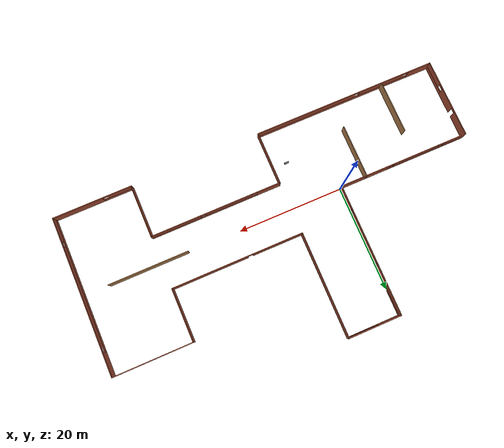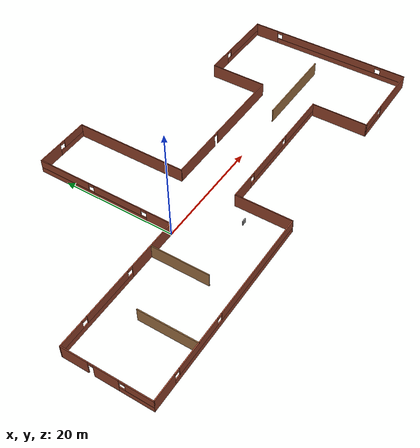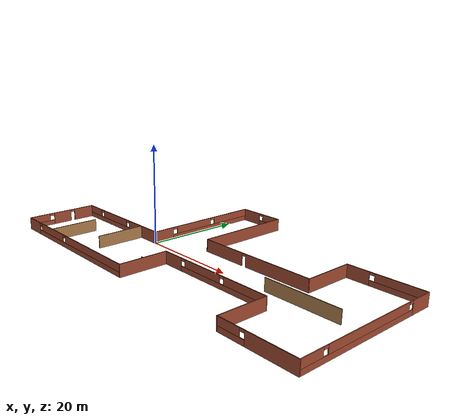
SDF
<?xml version='1.0'?>
<sdf version='1.6'>
  <model name='Building'>
    <pose frame=''>12.5 5 0 0 -0 0</pose>
    <link name='Wall_0'>
      <pose frame=''>-12.5 7.5 0 0 -0 1.5708</pose>
      <visual name='Wall_0_Visual_0'>
        <pose frame=''>-10.2875 0 1.25 0 -0 0</pose>
        <geometry>
          <box>
            <size>4.575 0.15 2.5</size>
          </box>
        </geometry>
        <material>
          <script>
            <uri>file://media/materials/scripts/gazebo.material</uri>
            <name>Gazebo/Bricks</name>
          </script>
          <ambient>1 1 1 1</ambient>
        </material>
        <meta>
          <layer>0</layer>
        </meta>
      </visual>
      <collision name='Wall_0_Collision_0'>
        <geometry>
          <box>
            <size>4.575 0.15 2.5</size>
          </box>
        </geometry>
        <pose frame=''>-10.2875 0 1.25 0 -0 0</pose>
      </collision>
      <visual name='Wall_0_Visual_1'>
        <pose frame=''>2.2875 0 0.5 0 -0 0</pose>
        <geometry>
          <box>
            <size>20.575 0.15 1</size>
          </box>
        </geometry>
        <material>
          <script>
            <uri>file://media/materials/scripts/gazebo.material</uri>
            <name>Gazebo/Bricks</name>
          </script>
          <ambient>1 1 1 1</ambient>
        </material>
        <meta>
          <layer>0</layer>
        </meta>
      </visual>
      <collision name='Wall_0_Collision_1'>
        <geometry>
          <box>
            <size>20.575 0.15 1</size>
          </box>
        </geometry>
        <pose frame=''>2.2875 0 0.5 0 -0 0</pose>
      </collision>
      <visual name='Wall_0_Visual_2'>
        <pose frame=''>-2.5 0 1.75 0 -0 0</pose>
        <geometry>
          <box>
            <size>9 0.15 1.5</size>
          </box>
        </geometry>
        <material>
          <script>
            <uri>file://media/materials/scripts/gazebo.material</uri>
            <name>Gazebo/Bricks</name>
          </script>
          <ambient>1 1 1 1</ambient>
        </material>
        <meta>
          <layer>0</layer>
        </meta>
      </visual>
      <collision name='Wall_0_Collision_2'>
        <geometry>
          <box>
            <size>9 0.15 1.5</size>
          </box>
        </geometry>
        <pose frame=''>-2.5 0 1.75 0 -0 0</pose>
      </collision>
      <visual name='Wall_0_Visual_3'>
        <pose frame=''>7.7875 0 1.75 0 -0 0</pose>
        <geometry>
          <box>
            <size>9.575 0.15 1.5</size>
          </box>
        </geometry>
        <material>
          <script>
            <uri>file://media/materials/scripts/gazebo.material</uri>
            <name>Gazebo/Bricks</name>
          </script>
          <ambient>1 1 1 1</ambient>
        </material>
        <meta>
          <layer>0</layer>
        </meta>
      </visual>
      <collision name='Wall_0_Collision_3'>
        <geometry>
          <box>
            <size>9.575 0.15 1.5</size>
          </box>
        </geometry>
        <pose frame=''>7.7875 0 1.75 0 -0 0</pose>
      </collision>
      <visual name='Wall_0_Visual_4'>
        <pose frame=''>-7.5 0 2.25 0 -0 0</pose>
        <geometry>
          <box>
            <size>1 0.15 0.5</size>
          </box>
        </geometry>
        <material>
          <script>
            <uri>file://media/materials/scripts/gazebo.material</uri>
            <name>Gazebo/Bricks</name>
          </script>
          <ambient>1 1 1 1</ambient>
        </material>
        <meta>
          <layer>0</layer>
        </meta>
      </visual>
      <collision name='Wall_0_Collision_4'>
        <geometry>
          <box>
            <size>1 0.15 0.5</size>
          </box>
        </geometry>
        <pose frame=''>-7.5 0 2.25 0 -0 0</pose>
      </collision>
      <visual name='Wall_0_Visual_5'>
        <pose frame=''>2.5 0 2.25 0 -0 0</pose>
        <geometry>
          <box>
            <size>1 0.15 0.5</size>
          </box>
        </geometry>
        <material>
          <script>
            <uri>file://media/materials/scripts/gazebo.material</uri>
            <name>Gazebo/Bricks</name>
          </script>
          <ambient>1 1 1 1</ambient>
        </material>
        <meta>
          <layer>0</layer>
        </meta>
      </visual>
      <collision name='Wall_0_Collision_5'>
        <geometry>
          <box>
            <size>1 0.15 0.5</size>
          </box>
        </geometry>
        <pose frame=''>2.5 0 2.25 0 -0 0</pose>
      </collision>
    </link>
    <link name='Wall_11'>
      <pose frame=''>30 10 0 0 -0 0</pose>
      <visual name='Wall_11_Visual_0'>
        <pose frame=''>-5.2875 0 1.25 0 -0 0</pose>
        <geometry>
          <box>
            <size>4.575 0.15 2.5</size>
          </box>
        </geometry>
        <material>
          <script>
            <uri>file://media/materials/scripts/gazebo.material</uri>
            <name>Gazebo/Bricks</name>
          </script>
          <ambient>1 1 1 1</ambient>
        </material>
        <meta>
          <layer>0</layer>
        </meta>
      </visual>
      <collision name='Wall_11_Collision_0'>
        <geometry>
          <box>
            <size>4.575 0.15 2.5</size>
          </box>
        </geometry>
        <pose frame=''>-5.2875 0 1.25 0 -0 0</pose>
      </collision>
      <visual name='Wall_11_Visual_1'>
        <pose frame=''>2.2875 0 0.5 0 -0 0</pose>
        <geometry>
          <box>
            <size>10.575 0.15 1</size>
          </box>
        </geometry>
        <material>
          <script>
            <uri>file://media/materials/scripts/gazebo.material</uri>
            <name>Gazebo/Bricks</name>
          </script>
          <ambient>1 1 1 1</ambient>
        </material>
        <meta>
          <layer>0</layer>
        </meta>
      </visual>
      <collision name='Wall_11_Collision_1'>
        <geometry>
          <box>
            <size>10.575 0.15 1</size>
          </box>
        </geometry>
        <pose frame=''>2.2875 0 0.5 0 -0 0</pose>
      </collision>
      <visual name='Wall_11_Visual_2'>
        <pose frame=''>2.7875 0 1.75 0 -0 0</pose>
        <geometry>
          <box>
            <size>9.575 0.15 1.5</size>
          </box>
        </geometry>
        <material>
          <script>
            <uri>file://media/materials/scripts/gazebo.material</uri>
            <name>Gazebo/Bricks</name>
          </script>
          <ambient>1 1 1 1</ambient>
        </material>
        <meta>
          <layer>0</layer>
        </meta>
      </visual>
      <collision name='Wall_11_Collision_2'>
        <geometry>
          <box>
            <size>9.575 0.15 1.5</size>
          </box>
        </geometry>
        <pose frame=''>2.7875 0 1.75 0 -0 0</pose>
      </collision>
      <visual name='Wall_11_Visual_3'>
        <pose frame=''>-2.5 0 2.25 0 -0 0</pose>
        <geometry>
          <box>
            <size>1 0.15 0.5</size>
          </box>
        </geometry>
        <material>
          <script>
            <uri>file://media/materials/scripts/gazebo.material</uri>
            <name>Gazebo/Bricks</name>
          </script>
          <ambient>1 1 1 1</ambient>
        </material>
        <meta>
          <layer>0</layer>
        </meta>
      </visual>
      <collision name='Wall_11_Collision_3'>
        <geometry>
          <box>
            <size>1 0.15 0.5</size>
          </box>
        </geometry>
        <pose frame=''>-2.5 0 2.25 0 -0 0</pose>
      </collision>
    </link>
    <link name='Wall_13'>
      <pose frame=''>37.5 -4.925 0 0 0 -1.5708</pose>
      <visual name='Wall_13_Visual_0'>
        <pose frame=''>-12.7125 0 1.25 0 -0 0</pose>
        <geometry>
          <box>
            <size>4.575 0.15 2.5</size>
          </box>
        </geometry>
        <material>
          <script>
            <uri>file://media/materials/scripts/gazebo.material</uri>
            <name>Gazebo/Bricks</name>
          </script>
          <ambient>1 1 1 1</ambient>
        </material>
        <meta>
          <layer>0</layer>
        </meta>
      </visual>
      <collision name='Wall_13_Collision_0'>
        <geometry>
          <box>
            <size>4.575 0.15 2.5</size>
          </box>
        </geometry>
        <pose frame=''>-12.7125 0 1.25 0 -0 0</pose>
      </collision>
      <visual name='Wall_13_Visual_1'>
        <pose frame=''>2.2875 0 0.5 0 -0 0</pose>
        <geometry>
          <box>
            <size>25.425 0.15 1</size>
          </box>
        </geometry>
        <material>
          <script>
            <uri>file://media/materials/scripts/gazebo.material</uri>
            <name>Gazebo/Bricks</name>
          </script>
          <ambient>1 1 1 1</ambient>
        </material>
        <meta>
          <layer>0</layer>
        </meta>
      </visual>
      <collision name='Wall_13_Collision_1'>
        <geometry>
          <box>
            <size>25.425 0.15 1</size>
          </box>
        </geometry>
        <pose frame=''>2.2875 0 0.5 0 -0 0</pose>
      </collision>
      <visual name='Wall_13_Visual_2'>
        <pose frame=''>0.075 0 1.75 0 -0 0</pose>
        <geometry>
          <box>
            <size>19 0.15 1.5</size>
          </box>
        </geometry>
        <material>
          <script>
            <uri>file://media/materials/scripts/gazebo.material</uri>
            <name>Gazebo/Bricks</name>
          </script>
          <ambient>1 1 1 1</ambient>
        </material>
        <meta>
          <layer>0</layer>
        </meta>
      </visual>
      <collision name='Wall_13_Collision_2'>
        <geometry>
          <box>
            <size>19 0.15 1.5</size>
          </box>
        </geometry>
        <pose frame=''>0.075 0 1.75 0 -0 0</pose>
      </collision>
      <visual name='Wall_13_Visual_3'>
        <pose frame=''>12.7875 0 1.75 0 -0 0</pose>
        <geometry>
          <box>
            <size>4.425 0.15 1.5</size>
          </box>
        </geometry>
        <material>
          <script>
            <uri>file://media/materials/scripts/gazebo.material</uri>
            <name>Gazebo/Bricks</name>
          </script>
          <ambient>1 1 1 1</ambient>
        </material>
        <meta>
          <layer>0</layer>
        </meta>
      </visual>
      <collision name='Wall_13_Collision_3'>
        <geometry>
          <box>
            <size>4.425 0.15 1.5</size>
          </box>
        </geometry>
        <pose frame=''>12.7875 0 1.75 0 -0 0</pose>
      </collision>
      <visual name='Wall_13_Visual_4'>
        <pose frame=''>-9.925 0 2.25 0 -0 0</pose>
        <geometry>
          <box>
            <size>1 0.15 0.5</size>
          </box>
        </geometry>
        <material>
          <script>
            <uri>file://media/materials/scripts/gazebo.material</uri>
            <name>Gazebo/Bricks</name>
          </script>
          <ambient>1 1 1 1</ambient>
        </material>
        <meta>
          <layer>0</layer>
        </meta>
      </visual>
      <collision name='Wall_13_Collision_4'>
        <geometry>
          <box>
            <size>1 0.15 0.5</size>
          </box>
        </geometry>
        <pose frame=''>-9.925 0 2.25 0 -0 0</pose>
      </collision>
      <visual name='Wall_13_Visual_5'>
        <pose frame=''>10.075 0 2.25 0 -0 0</pose>
        <geometry>
          <box>
            <size>1 0.15 0.5</size>
          </box>
        </geometry>
        <material>
          <script>
            <uri>file://media/materials/scripts/gazebo.material</uri>
            <name>Gazebo/Bricks</name>
          </script>
          <ambient>1 1 1 1</ambient>
        </material>
        <meta>
          <layer>0</layer>
        </meta>
      </visual>
      <collision name='Wall_13_Collision_5'>
        <geometry>
          <box>
            <size>1 0.15 0.5</size>
          </box>
        </geometry>
        <pose frame=''>10.075 0 2.25 0 -0 0</pose>
      </collision>
    </link>
    <link name='Wall_15'>
      <pose frame=''>30 -20 0 0 -0 3.14159</pose>
      <visual name='Wall_15_Visual_0'>
        <pose frame=''>-2.7875 0 1.25 0 -0 0</pose>
        <geometry>
          <box>
            <size>9.575 0.15 2.5</size>
          </box>
        </geometry>
        <material>
          <script>
            <uri>file://media/materials/scripts/gazebo.material</uri>
            <name>Gazebo/Bricks</name>
          </script>
          <ambient>1 1 1 1</ambient>
        </material>
        <meta>
          <layer>0</layer>
        </meta>
      </visual>
      <collision name='Wall_15_Collision_0'>
        <geometry>
          <box>
            <size>9.575 0.15 2.5</size>
          </box>
        </geometry>
        <pose frame=''>-2.7875 0 1.25 0 -0 0</pose>
      </collision>
      <visual name='Wall_15_Visual_1'>
        <pose frame=''>4.7875 0 0.5 0 -0 0</pose>
        <geometry>
          <box>
            <size>5.575 0.15 1</size>
          </box>
        </geometry>
        <material>
          <script>
            <uri>file://media/materials/scripts/gazebo.material</uri>
            <name>Gazebo/Bricks</name>
          </script>
          <ambient>1 1 1 1</ambient>
        </material>
        <meta>
          <layer>0</layer>
        </meta>
      </visual>
      <collision name='Wall_15_Collision_1'>
        <geometry>
          <box>
            <size>5.575 0.15 1</size>
          </box>
        </geometry>
        <pose frame=''>4.7875 0 0.5 0 -0 0</pose>
      </collision>
      <visual name='Wall_15_Visual_2'>
        <pose frame=''>5.2875 0 1.75 0 -0 0</pose>
        <geometry>
          <box>
            <size>4.575 0.15 1.5</size>
          </box>
        </geometry>
        <material>
          <script>
            <uri>file://media/materials/scripts/gazebo.material</uri>
            <name>Gazebo/Bricks</name>
          </script>
          <ambient>1 1 1 1</ambient>
        </material>
        <meta>
          <layer>0</layer>
        </meta>
      </visual>
      <collision name='Wall_15_Collision_2'>
        <geometry>
          <box>
            <size>4.575 0.15 1.5</size>
          </box>
        </geometry>
        <pose frame=''>5.2875 0 1.75 0 -0 0</pose>
      </collision>
      <visual name='Wall_15_Visual_3'>
        <pose frame=''>2.5 0 2.25 0 -0 0</pose>
        <geometry>
          <box>
            <size>1 0.15 0.5</size>
          </box>
        </geometry>
        <material>
          <script>
            <uri>file://media/materials/scripts/gazebo.material</uri>
            <name>Gazebo/Bricks</name>
          </script>
          <ambient>1 1 1 1</ambient>
        </material>
        <meta>
          <layer>0</layer>
        </meta>
      </visual>
      <collision name='Wall_15_Collision_3'>
        <geometry>
          <box>
            <size>1 0.15 0.5</size>
          </box>
        </geometry>
        <pose frame=''>2.5 0 2.25 0 -0 0</pose>
      </collision>
    </link>
    <link name='Wall_17'>
      <collision name='Wall_17_Collision'>
        <geometry>
          <box>
            <size>10.15 0.15 2.5</size>
          </box>
        </geometry>
        <pose frame=''>0 0 1.25 0 -0 0</pose>
      </collision>
      <visual name='Wall_17_Visual'>
        <pose frame=''>0 0 1.25 0 -0 0</pose>
        <geometry>
          <box>
            <size>10.15 0.15 2.5</size>
          </box>
        </geometry>
        <material>
          <script>
            <uri>file://media/materials/scripts/gazebo.material</uri>
            <name>Gazebo/Bricks</name>
          </script>
          <ambient>1 1 1 1</ambient>
        </material>
        <meta>
          <layer>0</layer>
        </meta>
      </visual>
      <pose frame=''>22.5 -15 0 0 -0 1.5708</pose>
    </link>
    <link name='Wall_19'>
      <pose frame=''>-25 -5 0 0 -0 3.14159</pose>
      <visual name='Wall_19_Visual_0'>
        <pose frame=''>-7.7875 0 1.25 0 -0 0</pose>
        <geometry>
          <box>
            <size>9.575 0.15 2.5</size>
          </box>
        </geometry>
        <material>
          <script>
            <uri>file://media/materials/scripts/gazebo.material</uri>
            <name>Gazebo/Bricks</name>
          </script>
          <ambient>1 1 1 1</ambient>
        </material>
        <meta>
          <layer>0</layer>
        </meta>
      </visual>
      <collision name='Wall_19_Collision_0'>
        <geometry>
          <box>
            <size>9.575 0.15 2.5</size>
          </box>
        </geometry>
        <pose frame=''>-7.7875 0 1.25 0 -0 0</pose>
      </collision>
      <visual name='Wall_19_Visual_1'>
        <pose frame=''>4.7875 0 0.5 0 -0 0</pose>
        <geometry>
          <box>
            <size>15.575 0.15 1</size>
          </box>
        </geometry>
        <material>
          <script>
            <uri>file://media/materials/scripts/gazebo.material</uri>
            <name>Gazebo/Bricks</name>
          </script>
          <ambient>1 1 1 1</ambient>
        </material>
        <meta>
          <layer>0</layer>
        </meta>
      </visual>
      <collision name='Wall_19_Collision_1'>
        <geometry>
          <box>
            <size>15.575 0.15 1</size>
          </box>
        </geometry>
        <pose frame=''>4.7875 0 0.5 0 -0 0</pose>
      </collision>
      <visual name='Wall_19_Visual_2'>
        <pose frame=''>2.5 0 1.75 0 -0 0</pose>
        <geometry>
          <box>
            <size>9 0.15 1.5</size>
          </box>
        </geometry>
        <material>
          <script>
            <uri>file://media/materials/scripts/gazebo.material</uri>
            <name>Gazebo/Bricks</name>
          </script>
          <ambient>1 1 1 1</ambient>
        </material>
        <meta>
          <layer>0</layer>
        </meta>
      </visual>
      <collision name='Wall_19_Collision_2'>
        <geometry>
          <box>
            <size>9 0.15 1.5</size>
          </box>
        </geometry>
        <pose frame=''>2.5 0 1.75 0 -0 0</pose>
      </collision>
      <visual name='Wall_19_Visual_3'>
        <pose frame=''>10.2875 0 1.75 0 -0 0</pose>
        <geometry>
          <box>
            <size>4.575 0.15 1.5</size>
          </box>
        </geometry>
        <material>
          <script>
            <uri>file://media/materials/scripts/gazebo.material</uri>
            <name>Gazebo/Bricks</name>
          </script>
          <ambient>1 1 1 1</ambient>
        </material>
        <meta>
          <layer>0</layer>
        </meta>
      </visual>
      <collision name='Wall_19_Collision_3'>
        <geometry>
          <box>
            <size>4.575 0.15 1.5</size>
          </box>
        </geometry>
        <pose frame=''>10.2875 0 1.75 0 -0 0</pose>
      </collision>
      <visual name='Wall_19_Visual_4'>
        <pose frame=''>-2.5 0 2.25 0 -0 0</pose>
        <geometry>
          <box>
            <size>1 0.15 0.5</size>
          </box>
        </geometry>
        <material>
          <script>
            <uri>file://media/materials/scripts/gazebo.material</uri>
            <name>Gazebo/Bricks</name>
          </script>
          <ambient>1 1 1 1</ambient>
        </material>
        <meta>
          <layer>0</layer>
        </meta>
      </visual>
      <collision name='Wall_19_Collision_4'>
        <geometry>
          <box>
            <size>1 0.15 0.5</size>
          </box>
        </geometry>
        <pose frame=''>-2.5 0 2.25 0 -0 0</pose>
      </collision>
      <visual name='Wall_19_Visual_5'>
        <pose frame=''>7.5 0 2.25 0 -0 0</pose>
        <geometry>
          <box>
            <size>1 0.15 0.5</size>
          </box>
        </geometry>
        <material>
          <script>
            <uri>file://media/materials/scripts/gazebo.material</uri>
            <name>Gazebo/Bricks</name>
          </script>
          <ambient>1 1 1 1</ambient>
        </material>
        <meta>
          <layer>0</layer>
        </meta>
      </visual>
      <collision name='Wall_19_Collision_5'>
        <geometry>
          <box>
            <size>1 0.15 0.5</size>
          </box>
        </geometry>
        <pose frame=''>7.5 0 2.25 0 -0 0</pose>
      </collision>
    </link>
    <link name='Wall_2'>
      <pose frame=''>-7.5 20 0 0 -0 0</pose>
      <visual name='Wall_2_Visual_0'>
        <pose frame=''>-2.7875 0 1.25 0 -0 0</pose>
        <geometry>
          <box>
            <size>4.575 0.15 2.5</size>
          </box>
        </geometry>
        <material>
          <script>
            <uri>file://media/materials/scripts/gazebo.material</uri>
            <name>Gazebo/Bricks</name>
          </script>
          <ambient>1 1 1 1</ambient>
        </material>
        <meta>
          <layer>0</layer>
        </meta>
      </visual>
      <collision name='Wall_2_Collision_0'>
        <geometry>
          <box>
            <size>4.575 0.15 2.5</size>
          </box>
        </geometry>
        <pose frame=''>-2.7875 0 1.25 0 -0 0</pose>
      </collision>
      <visual name='Wall_2_Visual_1'>
        <pose frame=''>2.2875 0 0.5 0 -0 0</pose>
        <geometry>
          <box>
            <size>5.575 0.15 1</size>
          </box>
        </geometry>
        <material>
          <script>
            <uri>file://media/materials/scripts/gazebo.material</uri>
            <name>Gazebo/Bricks</name>
          </script>
          <ambient>1 1 1 1</ambient>
        </material>
        <meta>
          <layer>0</layer>
        </meta>
      </visual>
      <collision name='Wall_2_Collision_1'>
        <geometry>
          <box>
            <size>5.575 0.15 1</size>
          </box>
        </geometry>
        <pose frame=''>2.2875 0 0.5 0 -0 0</pose>
      </collision>
      <visual name='Wall_2_Visual_2'>
        <pose frame=''>2.7875 0 1.75 0 -0 0</pose>
        <geometry>
          <box>
            <size>4.575 0.15 1.5</size>
          </box>
        </geometry>
        <material>
          <script>
            <uri>file://media/materials/scripts/gazebo.material</uri>
            <name>Gazebo/Bricks</name>
          </script>
          <ambient>1 1 1 1</ambient>
        </material>
        <meta>
          <layer>0</layer>
        </meta>
      </visual>
      <collision name='Wall_2_Collision_2'>
        <geometry>
          <box>
            <size>4.575 0.15 1.5</size>
          </box>
        </geometry>
        <pose frame=''>2.7875 0 1.75 0 -0 0</pose>
      </collision>
      <visual name='Wall_2_Visual_3'>
        <pose frame=''>0 0 2.25 0 -0 0</pose>
        <geometry>
          <box>
            <size>1 0.15 0.5</size>
          </box>
        </geometry>
        <material>
          <script>
            <uri>file://media/materials/scripts/gazebo.material</uri>
            <name>Gazebo/Bricks</name>
          </script>
          <ambient>1 1 1 1</ambient>
        </material>
        <meta>
          <layer>0</layer>
        </meta>
      </visual>
      <collision name='Wall_2_Collision_3'>
        <geometry>
          <box>
            <size>1 0.15 0.5</size>
          </box>
        </geometry>
        <pose frame=''>0 0 2.25 0 -0 0</pose>
      </collision>
    </link>
    <link name='Wall_21'>
      <pose frame=''>-37.5 -12.5 0 0 0 -1.5708</pose>
      <visual name='Wall_21_Visual_0'>
        <pose frame=''>-5.2625 0 1.25 0 -0 0</pose>
        <geometry>
          <box>
            <size>4.625 0.15 2.5</size>
          </box>
        </geometry>
        <material>
          <script>
            <uri>file://media/materials/scripts/gazebo.material</uri>
            <name>Gazebo/Bricks</name>
          </script>
          <ambient>1 1 1 1</ambient>
        </material>
        <meta>
          <layer>0</layer>
        </meta>
      </visual>
      <collision name='Wall_21_Collision_0'>
        <geometry>
          <box>
            <size>4.625 0.15 2.5</size>
          </box>
        </geometry>
        <pose frame=''>-5.2625 0 1.25 0 -0 0</pose>
      </collision>
      <visual name='Wall_21_Visual_1'>
        <pose frame=''>-0.025 0 1.25 0 -0 0</pose>
        <geometry>
          <box>
            <size>4.05 0.15 2.5</size>
          </box>
        </geometry>
        <material>
          <script>
            <uri>file://media/materials/scripts/gazebo.material</uri>
            <name>Gazebo/Bricks</name>
          </script>
          <ambient>1 1 1 1</ambient>
        </material>
        <meta>
          <layer>0</layer>
        </meta>
      </visual>
      <collision name='Wall_21_Collision_1'>
        <geometry>
          <box>
            <size>4.05 0.15 2.5</size>
          </box>
        </geometry>
        <pose frame=''>-0.025 0 1.25 0 -0 0</pose>
      </collision>
      <visual name='Wall_21_Visual_2'>
        <pose frame=''>4.7875 0 0.5 0 -0 0</pose>
        <geometry>
          <box>
            <size>5.575 0.15 1</size>
          </box>
        </geometry>
        <material>
          <script>
            <uri>file://media/materials/scripts/gazebo.material</uri>
            <name>Gazebo/Bricks</name>
          </script>
          <ambient>1 1 1 1</ambient>
        </material>
        <meta>
          <layer>0</layer>
        </meta>
      </visual>
      <collision name='Wall_21_Collision_2'>
        <geometry>
          <box>
            <size>5.575 0.15 1</size>
          </box>
        </geometry>
        <pose frame=''>4.7875 0 0.5 0 -0 0</pose>
      </collision>
      <visual name='Wall_21_Visual_3'>
        <pose frame=''>5.2875 0 1.75 0 -0 0</pose>
        <geometry>
          <box>
            <size>4.575 0.15 1.5</size>
          </box>
        </geometry>
        <material>
          <script>
            <uri>file://media/materials/scripts/gazebo.material</uri>
            <name>Gazebo/Bricks</name>
          </script>
          <ambient>1 1 1 1</ambient>
        </material>
        <meta>
          <layer>0</layer>
        </meta>
      </visual>
      <collision name='Wall_21_Collision_3'>
        <geometry>
          <box>
            <size>4.575 0.15 1.5</size>
          </box>
        </geometry>
        <pose frame=''>5.2875 0 1.75 0 -0 0</pose>
      </collision>
      <visual name='Wall_21_Visual_4'>
        <pose frame=''>-2.5 0 2.25 0 -0 0</pose>
        <geometry>
          <box>
            <size>0.9 0.15 0.5</size>
          </box>
        </geometry>
        <material>
          <script>
            <uri>file://media/materials/scripts/gazebo.material</uri>
            <name>Gazebo/Bricks</name>
          </script>
          <ambient>1 1 1 1</ambient>
        </material>
        <meta>
          <layer>0</layer>
        </meta>
      </visual>
      <collision name='Wall_21_Collision_4'>
        <geometry>
          <box>
            <size>0.9 0.15 0.5</size>
          </box>
        </geometry>
        <pose frame=''>-2.5 0 2.25 0 -0 0</pose>
      </collision>
      <visual name='Wall_21_Visual_5'>
        <pose frame=''>2.5 0 2.25 0 -0 0</pose>
        <geometry>
          <box>
            <size>1 0.15 0.5</size>
          </box>
        </geometry>
        <material>
          <script>
            <uri>file://media/materials/scripts/gazebo.material</uri>
            <name>Gazebo/Bricks</name>
          </script>
          <ambient>1 1 1 1</ambient>
        </material>
        <meta>
          <layer>0</layer>
        </meta>
      </visual>
      <collision name='Wall_21_Collision_5'>
        <geometry>
          <box>
            <size>1 0.15 0.5</size>
          </box>
        </geometry>
        <pose frame=''>2.5 0 2.25 0 -0 0</pose>
      </collision>
    </link>
    <link name='Wall_23'>
      <pose frame=''>-20 -20 0 0 -0 0</pose>
      <visual name='Wall_23_Visual_0'>
        <pose frame=''>-15.2875 0 1.25 0 -0 0</pose>
        <geometry>
          <box>
            <size>4.575 0.15 2.5</size>
          </box>
        </geometry>
        <material>
          <script>
            <uri>file://media/materials/scripts/gazebo.material</uri>
            <name>Gazebo/Bricks</name>
          </script>
          <ambient>1 1 1 1</ambient>
        </material>
        <meta>
          <layer>0</layer>
        </meta>
      </visual>
      <collision name='Wall_23_Collision_0'>
        <geometry>
          <box>
            <size>4.575 0.15 2.5</size>
          </box>
        </geometry>
        <pose frame=''>-15.2875 0 1.25 0 -0 0</pose>
      </collision>
      <visual name='Wall_23_Visual_1'>
        <pose frame=''>2.2875 0 0.5 0 -0 0</pose>
        <geometry>
          <box>
            <size>30.575 0.15 1</size>
          </box>
        </geometry>
        <material>
          <script>
            <uri>file://media/materials/scripts/gazebo.material</uri>
            <name>Gazebo/Bricks</name>
          </script>
          <ambient>1 1 1 1</ambient>
        </material>
        <meta>
          <layer>0</layer>
        </meta>
      </visual>
      <collision name='Wall_23_Collision_1'>
        <geometry>
          <box>
            <size>30.575 0.15 1</size>
          </box>
        </geometry>
        <pose frame=''>2.2875 0 0.5 0 -0 0</pose>
      </collision>
      <visual name='Wall_23_Visual_2'>
        <pose frame=''>-7.5 0 1.75 0 -0 0</pose>
        <geometry>
          <box>
            <size>9 0.15 1.5</size>
          </box>
        </geometry>
        <material>
          <script>
            <uri>file://media/materials/scripts/gazebo.material</uri>
            <name>Gazebo/Bricks</name>
          </script>
          <ambient>1 1 1 1</ambient>
        </material>
        <meta>
          <layer>0</layer>
        </meta>
      </visual>
      <collision name='Wall_23_Collision_2'>
        <geometry>
          <box>
            <size>9 0.15 1.5</size>
          </box>
        </geometry>
        <pose frame=''>-7.5 0 1.75 0 -0 0</pose>
      </collision>
      <visual name='Wall_23_Visual_3'>
        <pose frame=''>7.7875 0 1.75 0 -0 0</pose>
        <geometry>
          <box>
            <size>19.575 0.15 1.5</size>
          </box>
        </geometry>
        <material>
          <script>
            <uri>file://media/materials/scripts/gazebo.material</uri>
            <name>Gazebo/Bricks</name>
          </script>
          <ambient>1 1 1 1</ambient>
        </material>
        <meta>
          <layer>0</layer>
        </meta>
      </visual>
      <collision name='Wall_23_Collision_3'>
        <geometry>
          <box>
            <size>19.575 0.15 1.5</size>
          </box>
        </geometry>
        <pose frame=''>7.7875 0 1.75 0 -0 0</pose>
      </collision>
      <visual name='Wall_23_Visual_4'>
        <pose frame=''>-12.5 0 2.25 0 -0 0</pose>
        <geometry>
          <box>
            <size>1 0.15 0.5</size>
          </box>
        </geometry>
        <material>
          <script>
            <uri>file://media/materials/scripts/gazebo.material</uri>
            <name>Gazebo/Bricks</name>
          </script>
          <ambient>1 1 1 1</ambient>
        </material>
        <meta>
          <layer>0</layer>
        </meta>
      </visual>
      <collision name='Wall_23_Collision_4'>
        <geometry>
          <box>
            <size>1 0.15 0.5</size>
          </box>
        </geometry>
        <pose frame=''>-12.5 0 2.25 0 -0 0</pose>
      </collision>
      <visual name='Wall_23_Visual_5'>
        <pose frame=''>-2.5 0 2.25 0 -0 0</pose>
        <geometry>
          <box>
            <size>1 0.15 0.5</size>
          </box>
        </geometry>
        <material>
          <script>
            <uri>file://media/materials/scripts/gazebo.material</uri>
            <name>Gazebo/Bricks</name>
          </script>
          <ambient>1 1 1 1</ambient>
        </material>
        <meta>
          <layer>0</layer>
        </meta>
      </visual>
      <collision name='Wall_23_Collision_5'>
        <geometry>
          <box>
            <size>1 0.15 0.5</size>
          </box>
        </geometry>
        <pose frame=''>-2.5 0 2.25 0 -0 0</pose>
      </collision>
    </link>
    <link name='Wall_24'>
      <collision name='Wall_24_Collision'>
        <geometry>
          <box>
            <size>10.15 0.15 2.5</size>
          </box>
        </geometry>
        <pose frame=''>0 0 1.25 0 -0 0</pose>
      </collision>
      <visual name='Wall_24_Visual'>
        <pose frame=''>0 0 1.25 0 -0 0</pose>
        <geometry>
          <box>
            <size>10.15 0.15 2.5</size>
          </box>
        </geometry>
        <material>
          <script>
            <uri>file://media/materials/scripts/gazebo.material</uri>
            <name>Gazebo/Bricks</name>
          </script>
          <ambient>1 1 1 1</ambient>
        </material>
        <meta>
          <layer>0</layer>
        </meta>
      </visual>
      <pose frame=''>-2.5 -15 0 0 -0 1.5708</pose>
    </link>
    <link name='Wall_26'>
      <pose frame=''>10 -10 0 0 -0 0</pose>
      <visual name='Wall_26_Visual_0'>
        <pose frame=''>-10.2875 0 1.25 0 -0 0</pose>
        <geometry>
          <box>
            <size>4.575 0.15 2.5</size>
          </box>
        </geometry>
        <material>
          <script>
            <uri>file://media/materials/scripts/gazebo.material</uri>
            <name>Gazebo/Bricks</name>
          </script>
          <ambient>1 1 1 1</ambient>
        </material>
        <meta>
          <layer>0</layer>
        </meta>
      </visual>
      <collision name='Wall_26_Collision_0'>
        <geometry>
          <box>
            <size>4.575 0.15 2.5</size>
          </box>
        </geometry>
        <pose frame=''>-10.2875 0 1.25 0 -0 0</pose>
      </collision>
      <visual name='Wall_26_Visual_1'>
        <pose frame=''>2.2875 0 0.5 0 -0 0</pose>
        <geometry>
          <box>
            <size>20.575 0.15 1</size>
          </box>
        </geometry>
        <material>
          <script>
            <uri>file://media/materials/scripts/gazebo.material</uri>
            <name>Gazebo/Bricks</name>
          </script>
          <ambient>1 1 1 1</ambient>
        </material>
        <meta>
          <layer>0</layer>
        </meta>
      </visual>
      <collision name='Wall_26_Collision_1'>
        <geometry>
          <box>
            <size>20.575 0.15 1</size>
          </box>
        </geometry>
        <pose frame=''>2.2875 0 0.5 0 -0 0</pose>
      </collision>
      <visual name='Wall_26_Visual_2'>
        <pose frame=''>-2.5 0 1.75 0 -0 0</pose>
        <geometry>
          <box>
            <size>9 0.15 1.5</size>
          </box>
        </geometry>
        <material>
          <script>
            <uri>file://media/materials/scripts/gazebo.material</uri>
            <name>Gazebo/Bricks</name>
          </script>
          <ambient>1 1 1 1</ambient>
        </material>
        <meta>
          <layer>0</layer>
        </meta>
      </visual>
      <collision name='Wall_26_Collision_2'>
        <geometry>
          <box>
            <size>9 0.15 1.5</size>
          </box>
        </geometry>
        <pose frame=''>-2.5 0 1.75 0 -0 0</pose>
      </collision>
      <visual name='Wall_26_Visual_3'>
        <pose frame=''>7.7875 0 1.75 0 -0 0</pose>
        <geometry>
          <box>
            <size>9.575 0.15 1.5</size>
          </box>
        </geometry>
        <material>
          <script>
            <uri>file://media/materials/scripts/gazebo.material</uri>
            <name>Gazebo/Bricks</name>
          </script>
          <ambient>1 1 1 1</ambient>
        </material>
        <meta>
          <layer>0</layer>
        </meta>
      </visual>
      <collision name='Wall_26_Collision_3'>
        <geometry>
          <box>
            <size>9.575 0.15 1.5</size>
          </box>
        </geometry>
        <pose frame=''>7.7875 0 1.75 0 -0 0</pose>
      </collision>
      <visual name='Wall_26_Visual_4'>
        <pose frame=''>-7.5 0 2.25 0 -0 0</pose>
        <geometry>
          <box>
            <size>1 0.15 0.5</size>
          </box>
        </geometry>
        <material>
          <script>
            <uri>file://media/materials/scripts/gazebo.material</uri>
            <name>Gazebo/Bricks</name>
          </script>
          <ambient>1 1 1 1</ambient>
        </material>
        <meta>
          <layer>0</layer>
        </meta>
      </visual>
      <collision name='Wall_26_Collision_4'>
        <geometry>
          <box>
            <size>1 0.15 0.5</size>
          </box>
        </geometry>
        <pose frame=''>-7.5 0 2.25 0 -0 0</pose>
      </collision>
      <visual name='Wall_26_Visual_5'>
        <pose frame=''>2.5 0 2.25 0 -0 0</pose>
        <geometry>
          <box>
            <size>1 0.15 0.5</size>
          </box>
        </geometry>
        <material>
          <script>
            <uri>file://media/materials/scripts/gazebo.material</uri>
            <name>Gazebo/Bricks</name>
          </script>
          <ambient>1 1 1 1</ambient>
        </material>
        <meta>
          <layer>0</layer>
        </meta>
      </visual>
      <collision name='Wall_26_Collision_5'>
        <geometry>
          <box>
            <size>1 0.15 0.5</size>
          </box>
        </geometry>
        <pose frame=''>2.5 0 2.25 0 -0 0</pose>
      </collision>
    </link>
    <link name='Wall_28'>
      <collision name='Wall_28_Collision'>
        <geometry>
          <box>
            <size>15.15 0.15 2.5</size>
          </box>
        </geometry>
        <pose frame=''>0 0 1.25 0 -0 0</pose>
      </collision>
      <visual name='Wall_28_Visual'>
        <pose frame=''>0 0 1.25 0 -0 0</pose>
        <geometry>
          <box>
            <size>15.15 0.15 2.5</size>
          </box>
        </geometry>
        <material>
          <script>
            <uri>file://media/materials/scripts/gazebo.material</uri>
            <name>Gazebo/Wood</name>
          </script>
          <ambient>1 1 1 1</ambient>
        </material>
        <meta>
          <layer>0</layer>
        </meta>
      </visual>
      <pose frame=''>25 -5 0 0 -0 0</pose>
    </link>
    <link name='Wall_30'>
      <collision name='Wall_30_Collision'>
        <geometry>
          <box>
            <size>10.15 0.15 2.5</size>
          </box>
        </geometry>
        <pose frame=''>0 0 1.25 0 -0 0</pose>
      </collision>
      <visual name='Wall_30_Visual'>
        <pose frame=''>0 0 1.25 0 -0 0</pose>
        <geometry>
          <box>
            <size>10.15 0.15 2.5</size>
          </box>
        </geometry>
        <material>
          <script>
            <uri>file://media/materials/scripts/gazebo.material</uri>
            <name>Gazebo/Wood</name>
          </script>
          <ambient>1 1 1 1</ambient>
        </material>
        <meta>
          <layer>0</layer>
        </meta>
      </visual>
      <pose frame=''>-27.5 -15 0 0 0 -1.5708</pose>
    </link>
    <link name='Wall_32'>
      <collision name='Wall_32_Collision'>
        <geometry>
          <box>
            <size>10.15 0.15 2.5</size>
          </box>
        </geometry>
        <pose frame=''>0 0 1.25 0 -0 0</pose>
      </collision>
      <visual name='Wall_32_Visual'>
        <pose frame=''>0 0 1.25 0 -0 0</pose>
        <geometry>
          <box>
            <size>10.15 0.15 2.5</size>
          </box>
        </geometry>
        <material>
          <script>
            <uri>file://media/materials/scripts/gazebo.material</uri>
            <name>Gazebo/Wood</name>
          </script>
          <ambient>1 1 1 1</ambient>
        </material>
        <meta>
          <layer>0</layer>
        </meta>
      </visual>
      <pose frame=''>-17.5 -10 0 0 0 -1.5708</pose>
    </link>
    <link name='Wall_4'>
      <collision name='Wall_4_Collision'>
        <geometry>
          <box>
            <size>20.15 0.15 2.5</size>
          </box>
        </geometry>
        <pose frame=''>0 0 1.25 0 -0 0</pose>
      </collision>
      <visual name='Wall_4_Visual'>
        <pose frame=''>0 0 1.25 0 -0 0</pose>
        <geometry>
          <box>
            <size>20.15 0.15 2.5</size>
          </box>
        </geometry>
        <material>
          <script>
            <uri>file://media/materials/scripts/gazebo.material</uri>
            <name>Gazebo/Bricks</name>
          </script>
          <ambient>1 1 1 1</ambient>
        </material>
        <meta>
          <layer>0</layer>
        </meta>
      </visual>
      <pose frame=''>-2.5 10 0 0 0 -1.5708</pose>
    </link>
    <link name='Wall_6'>
      <pose frame=''>10 0 0 0 -0 0</pose>
      <visual name='Wall_6_Visual_0'>
        <pose frame=''>-7.7625 0 1.25 0 -0 0</pose>
        <geometry>
          <box>
            <size>9.625 0.15 2.5</size>
          </box>
        </geometry>
        <material>
          <script>
            <uri>file://media/materials/scripts/gazebo.material</uri>
            <name>Gazebo/Bricks</name>
          </script>
          <ambient>1 1 1 1</ambient>
        </material>
        <meta>
          <layer>0</layer>
        </meta>
      </visual>
      <collision name='Wall_6_Collision_0'>
        <geometry>
          <box>
            <size>9.625 0.15 2.5</size>
          </box>
        </geometry>
        <pose frame=''>-7.7625 0 1.25 0 -0 0</pose>
      </collision>
      <visual name='Wall_6_Visual_1'>
        <pose frame=''>5.2625 0 1.25 0 -0 0</pose>
        <geometry>
          <box>
            <size>14.625 0.15 2.5</size>
          </box>
        </geometry>
        <material>
          <script>
            <uri>file://media/materials/scripts/gazebo.material</uri>
            <name>Gazebo/Bricks</name>
          </script>
          <ambient>1 1 1 1</ambient>
        </material>
        <meta>
          <layer>0</layer>
        </meta>
      </visual>
      <collision name='Wall_6_Collision_1'>
        <geometry>
          <box>
            <size>14.625 0.15 2.5</size>
          </box>
        </geometry>
        <pose frame=''>5.2625 0 1.25 0 -0 0</pose>
      </collision>
      <visual name='Wall_6_Visual_2'>
        <pose frame=''>-2.5 0 2.25 0 -0 0</pose>
        <geometry>
          <box>
            <size>0.9 0.15 0.5</size>
          </box>
        </geometry>
        <material>
          <script>
            <uri>file://media/materials/scripts/gazebo.material</uri>
            <name>Gazebo/Bricks</name>
          </script>
          <ambient>1 1 1 1</ambient>
        </material>
        <meta>
          <layer>0</layer>
        </meta>
      </visual>
      <collision name='Wall_6_Collision_2'>
        <geometry>
          <box>
            <size>0.9 0.15 0.5</size>
          </box>
        </geometry>
        <pose frame=''>-2.5 0 2.25 0 -0 0</pose>
      </collision>
    </link>
    <link name='Wall_9'>
      <collision name='Wall_9_Collision'>
        <geometry>
          <box>
            <size>10.15 0.15 2.5</size>
          </box>
        </geometry>
        <pose frame=''>0 0 1.25 0 -0 0</pose>
      </collision>
      <visual name='Wall_9_Visual'>
        <pose frame=''>0 0 1.25 0 -0 0</pose>
        <geometry>
          <box>
            <size>10.15 0.15 2.5</size>
          </box>
        </geometry>
        <material>
          <script>
            <uri>file://media/materials/scripts/gazebo.material</uri>
            <name>Gazebo/Bricks</name>
          </script>
          <ambient>1 1 1 1</ambient>
        </material>
        <meta>
          <layer>0</layer>
        </meta>
      </visual>
      <pose frame=''>22.5 5 0 0 -0 1.5708</pose>
    </link>
    <link name='Window_9'>
      <collision name='Window_9_Collision'>
        <geometry>
          <box>
            <size>0.8 0.17 0.8</size>
          </box>
        </geometry>
        <pose frame=''>0 0 0.4 0 -0 0</pose>
      </collision>
      <visual name='Window_9_Visual'>
        <pose frame=''>0 0 0.4 0 -0 0</pose>
        <geometry>
          <box>
            <size>0.8 0.17 0.8</size>
          </box>
        </geometry>
        <material>
          <script>
            <uri>file://media/materials/scripts/gazebo.material</uri>
            <name>Gazebo/Grey</name>
          </script>
        </material>
      </visual>
      <pose frame=''>-5.28751 -13.263 0.5 0 -0 0</pose>
    </link>
    <static>1</static>
  </model>
</sdf>
